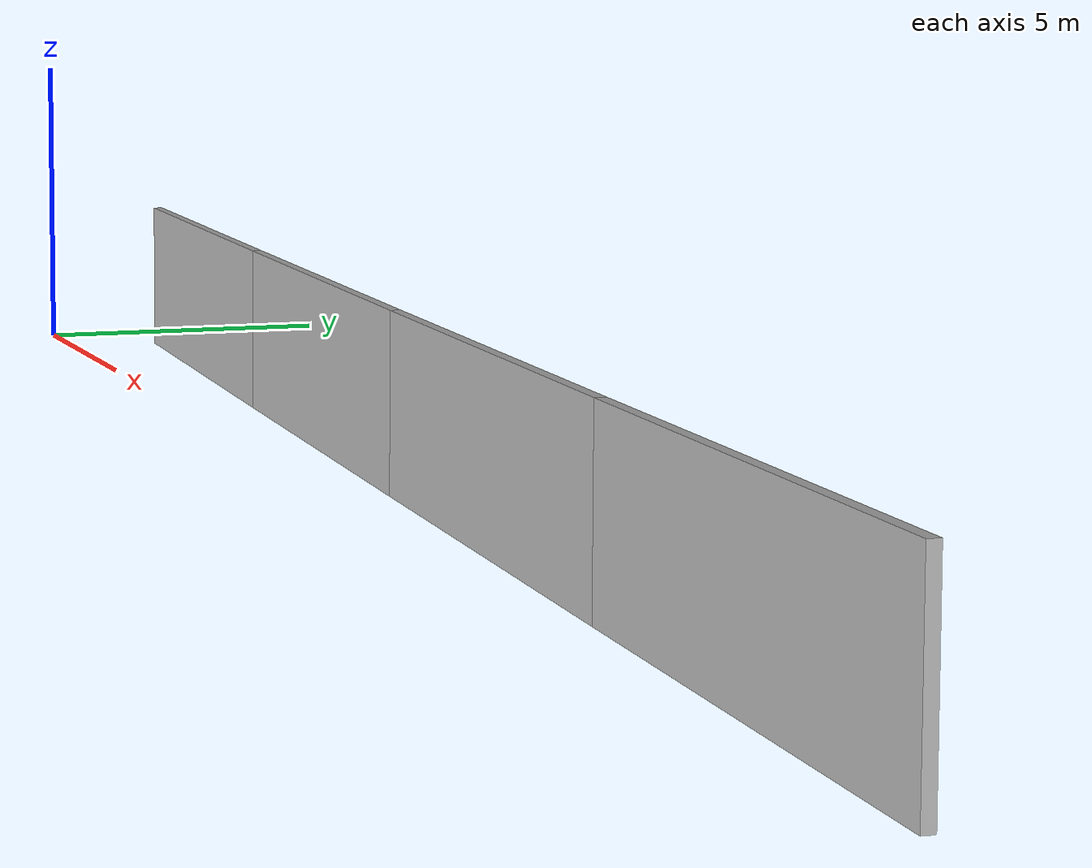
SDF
<?xml version="1.0" ?>
<sdf version="1.6">
  <model name="sps_4002">
    <pose frame="">0 0 0 0 -0 0</pose>
    <static>1</static>
    <self_collide>0</self_collide>
    <allow_auto_disable>0</allow_auto_disable>
    <link name="Wall4251">
      <kinematic>0</kinematic>
      <gravity>1</gravity>
      <self_collide>0</self_collide>
      <collision name="collision">
        <geometry>
          <box>
            <size>8.25181 0.15 2.5</size>
          </box>
        </geometry>
        <pose frame="">0 0 0 0 -0 0</pose>
      </collision>
      <visual name="visual">
        <geometry>
          <box>
            <size>8.25181 0.15 2.5</size>
          </box>
        </geometry>
        <pose frame="">0 0 0 0 -0 0</pose>
        <cast_shadows>1</cast_shadows>
        <transparency>0.0</transparency>
      </visual>
      <pose frame="">5.78725 1.36439 1.25 0 0 -0.0577846</pose>
    </link>
    <link name="Wall4252">
      <kinematic>0</kinematic>
      <gravity>1</gravity>
      <self_collide>0</self_collide>
      <collision name="collision">
        <geometry>
          <box>
            <size>8.25205 0.15 2.5</size>
          </box>
        </geometry>
        <pose frame="">0 0 0 0 -0 0</pose>
      </collision>
      <visual name="visual">
        <geometry>
          <box>
            <size>8.25205 0.15 2.5</size>
          </box>
        </geometry>
        <pose frame="">0 0 0 0 -0 0</pose>
        <cast_shadows>1</cast_shadows>
        <transparency>0.0</transparency>
      </visual>
      <pose frame="">14.026 0.897597 1.25 0 0 -0.0554123</pose>
    </link>
    <link name="Wall4253">
      <kinematic>0</kinematic>
      <gravity>1</gravity>
      <self_collide>0</self_collide>
      <collision name="collision">
        <geometry>
          <box>
            <size>8.2518 0.15 2.5</size>
          </box>
        </geometry>
        <pose frame="">0 0 0 0 -0 0</pose>
      </collision>
      <visual name="visual">
        <geometry>
          <box>
            <size>8.2518 0.15 2.5</size>
          </box>
        </geometry>
        <pose frame="">0 0 0 0 -0 0</pose>
        <cast_shadows>1</cast_shadows>
        <transparency>0.0</transparency>
      </visual>
      <pose frame="">22.2657 0.450179 1.25 0 0 -0.0530807</pose>
    </link>
    <link name="Wall4254">
      <kinematic>0</kinematic>
      <gravity>1</gravity>
      <self_collide>0</self_collide>
      <collision name="collision">
        <geometry>
          <box>
            <size>8.25223 0.15 2.5</size>
          </box>
        </geometry>
        <pose frame="">0 0 0 0 -0 0</pose>
      </collision>
      <visual name="visual">
        <geometry>
          <box>
            <size>8.25223 0.15 2.5</size>
          </box>
        </geometry>
        <pose frame="">0 0 0 0 -0 0</pose>
        <cast_shadows>1</cast_shadows>
        <transparency>0.0</transparency>
      </visual>
      <pose frame="">30.5066 0.022292 1.25 0 0 -0.0506709</pose>
    </link>
  </model>
</sdf>
